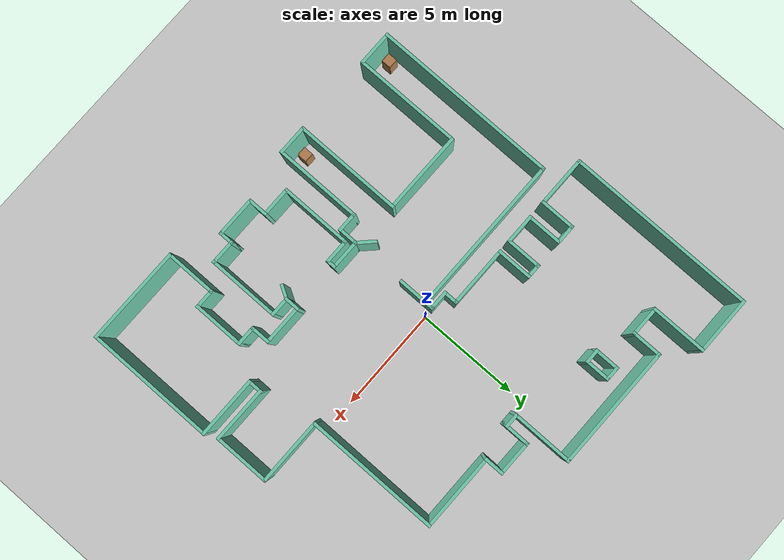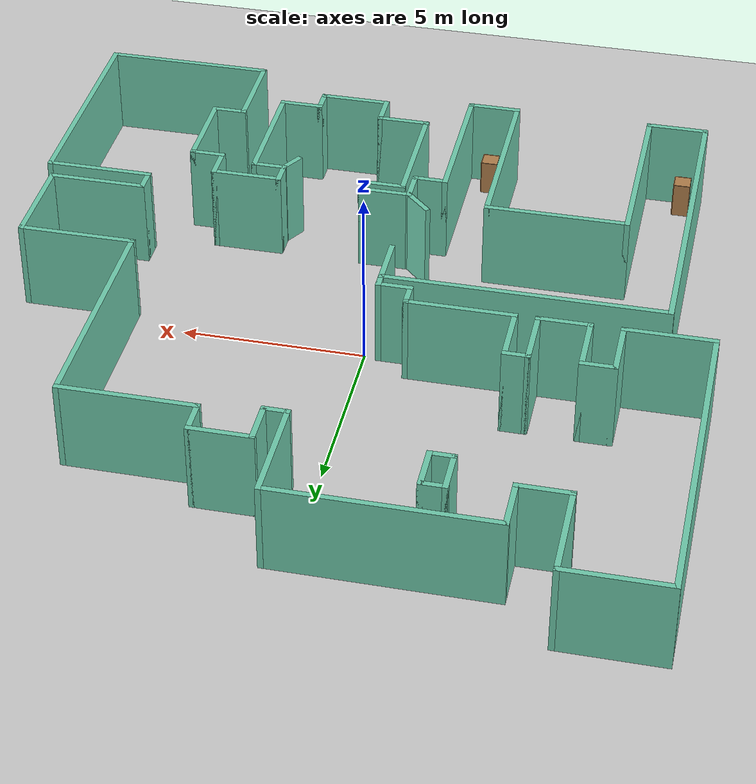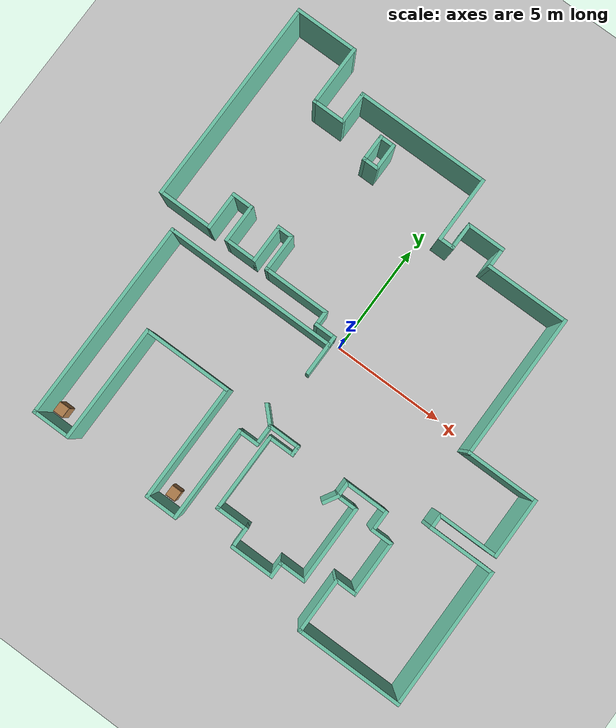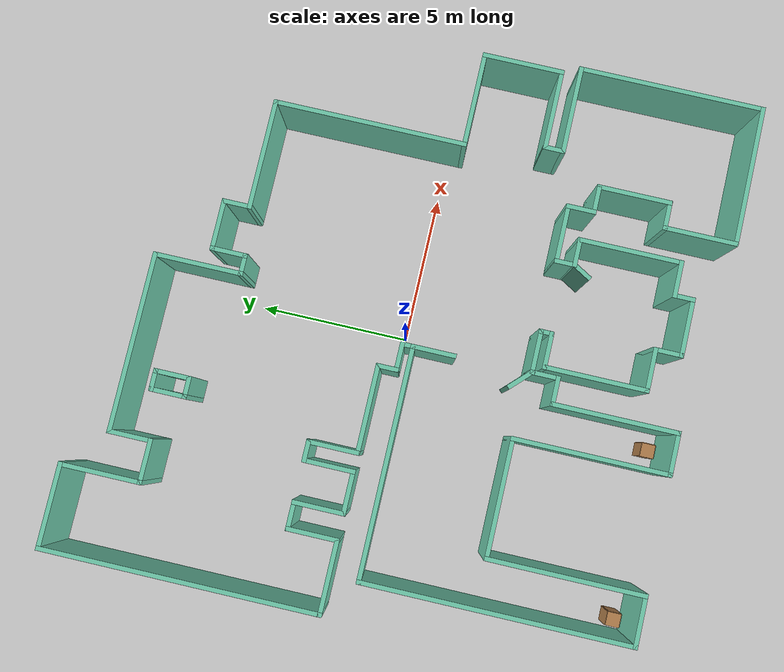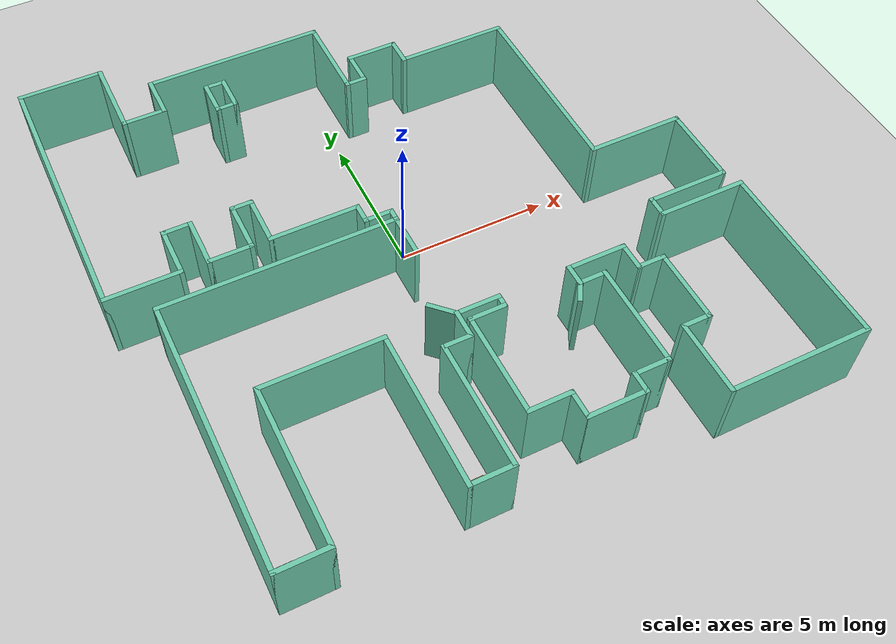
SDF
<sdf version="1.6">
 <world name="default">
  <light name="sun" type="directional">
   <pose>0 0 10 0 -0 0</pose>
   <diffuse>0.8 0.8 0.8 1</diffuse>
   <specular>0.2 0.2 0.2 1</specular>
   <attenuation>
    <range>1000</range>
    <constant>0.9</constant>
    <linear>0.01</linear>
    <quadratic>0.001</quadratic>
   </attenuation>
   <direction>-0.5 0.1 -0.9</direction>
  </light>
  <model name="ground_plane">
   <static>1</static>
   <link name="link">
    <collision name="collision">
     <geometry><plane><normal>0 0 1</normal><size>100 100</size></plane></geometry>
     <surface>
      <contact><collide_bitmask>65535</collide_bitmask></contact>
      <friction><ode><mu>100</mu><mu2>50</mu2></ode></friction>
     </surface>
    </collision>
    <visual name="visual">
     <cast_shadows>0</cast_shadows>
     <geometry><plane><normal>0 0 1</normal><size>100 100</size></plane></geometry>
     <material>
      <script><uri>file://media/materials/scripts/gazebo.material</uri><name>Gazebo/Grey</name></script>
     </material>
    </visual>
   </link>
  </model>
  <gravity>0 0 -9.8</gravity>
  <magnetic_field>6e-06 2.3e-05 -4.2e-05</magnetic_field>
  <atmosphere type="adiabatic"/>
  <physics name="default_physics" default="0" type="ode">
   <max_step_size>0.001</max_step_size>
   <real_time_factor>1</real_time_factor>
   <real_time_update_rate>1000</real_time_update_rate>
  </physics>
  <scene><ambient>0.4 0.4 0.4 1</ambient><background>0.7 0.7 0.7 1</background><shadows>1</shadows></scene>
  <audio><device>default</device></audio>
  <spherical_coordinates>
   <surface_model>EARTH_WGS84</surface_model>
   <latitude_deg>0</latitude_deg>
   <longitude_deg>0</longitude_deg>
   <elevation>0</elevation>
   <heading_deg>0</heading_deg>
  </spherical_coordinates>
  <model name="map_119">
   <pose>0.290775 -0.032065 0 0 -0 0</pose>
   <link name="Wall_10">
    <collision name="Wall_10_Collision">
     <geometry><box><size>9.25 0.15 2.5</size></box></geometry>
     <pose>0 0 1.25 0 -0 0</pose>
    </collision>
    <visual name="Wall_10_Visual">
     <pose>0 0 1.25 0 -0 0</pose>
     <geometry><box><size>9.25 0.15 2.5</size></box></geometry>
     <material>
      <script><uri>file://media/materials/scripts/gazebo.material</uri><name>Gazebo/Grey</name></script>
      <ambient>0.435294 0.796078 0.67451 1</ambient>
     </material>
     <meta><layer>0</layer></meta>
    </visual>
    <pose>-9.525 5.2 0 0 -0 -1.5708</pose>
   </link>
   <link name="Wall_100">
    <collision name="Wall_100_Collision">
     <geometry><box><size>1.25 0.15 2.5</size></box></geometry>
     <pose>0 0 1.25 0 -0 0</pose>
    </collision>
    <visual name="Wall_100_Visual">
     <pose>0 0 1.25 0 -0 0</pose>
     <geometry><box><size>1.25 0.15 2.5</size></box></geometry>
     <material>
      <script><uri>file://media/materials/scripts/gazebo.material</uri><name>Gazebo/Grey</name></script>
      <ambient>0.435294 0.796078 0.67451 1</ambient>
     </material>
     <meta><layer>0</layer></meta>
    </visual>
    <pose>-3.28112 6.98822 0 0 -0 -1.5708</pose>
   </link>
   <link name="Wall_101">
    <collision name="Wall_101_Collision">
     <geometry><box><size>0.75 0.15 2.5</size></box></geometry>
     <pose>0 0 1.25 0 -0 0</pose>
    </collision>
    <visual name="Wall_101_Visual">
     <pose>0 0 1.25 0 -0 0</pose>
     <geometry><box><size>0.75 0.15 2.5</size></box></geometry>
     <material>
      <script><uri>file://media/materials/scripts/gazebo.material</uri><name>Gazebo/Grey</name></script>
      <ambient>0.435294 0.796078 0.67451 1</ambient>
     </material>
     <meta><layer>0</layer></meta>
    </visual>
    <pose>-3.58112 6.43822 0 0 -0 3.14159</pose>
   </link>
   <link name="Wall_12">
    <collision name="Wall_12_Collision">
     <geometry><box><size>2.5 0.15 2.5</size></box></geometry>
     <pose>0 0 1.25 0 -0 0</pose>
    </collision>
    <visual name="Wall_12_Visual">
     <pose>0 0 1.25 0 -0 0</pose>
     <geometry><box><size>2.5 0.15 2.5</size></box></geometry>
     <material>
      <script><uri>file://media/materials/scripts/gazebo.material</uri><name>Gazebo/Grey</name></script>
      <ambient>0.435294 0.796078 0.67451 1</ambient>
     </material>
     <meta><layer>0</layer></meta>
    </visual>
    <pose>-8.35 0.65 0 0 -0 0</pose>
   </link>
   <link name="Wall_13">
    <collision name="Wall_13_Collision">
     <geometry><box><size>1.75 0.15 2.5</size></box></geometry>
     <pose>0 0 1.25 0 -0 0</pose>
    </collision>
    <visual name="Wall_13_Visual">
     <pose>0 0 1.25 0 -0 0</pose>
     <geometry><box><size>1.75 0.15 2.5</size></box></geometry>
     <material>
      <script><uri>file://media/materials/scripts/gazebo.material</uri><name>Gazebo/Grey</name></script>
      <ambient>0.435294 0.796078 0.67451 1</ambient>
     </material>
     <meta><layer>0</layer></meta>
    </visual>
    <pose>-7.175 1.45 0 0 -0 1.5708</pose>
   </link>
   <link name="Wall_14">
    <collision name="Wall_14_Collision">
     <geometry><box><size>1 0.15 2.5</size></box></geometry>
     <pose>0 0 1.25 0 -0 0</pose>
    </collision>
    <visual name="Wall_14_Visual">
     <pose>0 0 1.25 0 -0 0</pose>
     <geometry><box><size>1 0.15 2.5</size></box></geometry>
     <material>
      <script><uri>file://media/materials/scripts/gazebo.material</uri><name>Gazebo/Grey</name></script>
      <ambient>0.435294 0.796078 0.67451 1</ambient>
     </material>
     <meta><layer>0</layer></meta>
    </visual>
    <pose>-6.75 2.25 0 0 -0 0</pose>
   </link>
   <link name="Wall_15">
    <collision name="Wall_15_Collision">
     <geometry><box><size>1.75 0.15 2.5</size></box></geometry>
     <pose>0 0 1.25 0 -0 0</pose>
    </collision>
    <visual name="Wall_15_Visual">
     <pose>0 0 1.25 0 -0 0</pose>
     <geometry><box><size>1.75 0.15 2.5</size></box></geometry>
     <material>
      <script><uri>file://media/materials/scripts/gazebo.material</uri><name>Gazebo/Grey</name></script>
      <ambient>0.435294 0.796078 0.67451 1</ambient>
     </material>
     <meta><layer>0</layer></meta>
    </visual>
    <pose>-6.325 1.45 0 0 -0 -1.5708</pose>
   </link>
   <link name="Wall_21">
    <collision name="Wall_21_Collision">
     <geometry><box><size>1.5 0.15 2.5</size></box></geometry>
     <pose>0 0 1.25 0 -0 0</pose>
    </collision>
    <visual name="Wall_21_Visual">
     <pose>0 0 1.25 0 -0 0</pose>
     <geometry><box><size>1.5 0.15 2.5</size></box></geometry>
     <material>
      <script><uri>file://media/materials/scripts/gazebo.material</uri><name>Gazebo/Grey</name></script>
      <ambient>0.435294 0.796078 0.67451 1</ambient>
     </material>
     <meta><layer>0</layer></meta>
    </visual>
    <pose>-5.65 0.65 0 0 -0 0</pose>
   </link>
   <link name="Wall_22">
    <collision name="Wall_22_Collision">
     <geometry><box><size>1.75 0.15 2.5</size></box></geometry>
     <pose>0 0 1.25 0 -0 0</pose>
    </collision>
    <visual name="Wall_22_Visual">
     <pose>0 0 1.25 0 -0 0</pose>
     <geometry><box><size>1.75 0.15 2.5</size></box></geometry>
     <material>
      <script><uri>file://media/materials/scripts/gazebo.material</uri><name>Gazebo/Grey</name></script>
      <ambient>0.435294 0.796078 0.67451 1</ambient>
     </material>
     <meta><layer>0</layer></meta>
    </visual>
    <pose>-4.975 1.45 0 0 -0 1.5708</pose>
   </link>
   <link name="Wall_23">
    <collision name="Wall_23_Collision">
     <geometry><box><size>0.75 0.15 2.5</size></box></geometry>
     <pose>0 0 1.25 0 -0 0</pose>
    </collision>
    <visual name="Wall_23_Visual">
     <pose>0 0 1.25 0 -0 0</pose>
     <geometry><box><size>0.75 0.15 2.5</size></box></geometry>
     <material>
      <script><uri>file://media/materials/scripts/gazebo.material</uri><name>Gazebo/Grey</name></script>
      <ambient>0.435294 0.796078 0.67451 1</ambient>
     </material>
     <meta><layer>0</layer></meta>
    </visual>
    <pose>-4.675 2.25 0 0 -0 0</pose>
   </link>
   <link name="Wall_24">
    <collision name="Wall_24_Collision">
     <geometry><box><size>1.75 0.15 2.5</size></box></geometry>
     <pose>0 0 1.25 0 -0 0</pose>
    </collision>
    <visual name="Wall_24_Visual">
     <pose>0 0 1.25 0 -0 0</pose>
     <geometry><box><size>1.75 0.15 2.5</size></box></geometry>
     <material>
      <script><uri>file://media/materials/scripts/gazebo.material</uri><name>Gazebo/Grey</name></script>
      <ambient>0.435294 0.796078 0.67451 1</ambient>
     </material>
     <meta><layer>0</layer></meta>
    </visual>
    <pose>-4.375 1.45 0 0 -0 -1.5708</pose>
   </link>
   <link name="Wall_25">
    <collision name="Wall_25_Collision">
     <geometry><box><size>3 0.15 2.5</size></box></geometry>
     <pose>0 0 1.25 0 -0 0</pose>
    </collision>
    <visual name="Wall_25_Visual">
     <pose>0 0 1.25 0 -0 0</pose>
     <geometry><box><size>3 0.15 2.5</size></box></geometry>
     <material>
      <script><uri>file://media/materials/scripts/gazebo.material</uri><name>Gazebo/Grey</name></script>
      <ambient>0.435294 0.796078 0.67451 1</ambient>
     </material>
     <meta><layer>0</layer></meta>
    </visual>
    <pose>-2.95 0.65 0 0 -0 0</pose>
   </link>
   <link name="Wall_26">
    <collision name="Wall_26_Collision">
     <geometry><box><size>0.75 0.15 2.5</size></box></geometry>
     <pose>0 0 1.25 0 -0 0</pose>
    </collision>
    <visual name="Wall_26_Visual">
     <pose>0 0 1.25 0 -0 0</pose>
     <geometry><box><size>0.75 0.15 2.5</size></box></geometry>
     <material>
      <script><uri>file://media/materials/scripts/gazebo.material</uri><name>Gazebo/Grey</name></script>
      <ambient>0.435294 0.796078 0.67451 1</ambient>
     </material>
     <meta><layer>0</layer></meta>
    </visual>
    <pose>-1.525 0.35 0 0 -0 -1.5708</pose>
   </link>
   <link name="Wall_27">
    <collision name="Wall_27_Collision">
     <geometry><box><size>1 0.15 2.5</size></box></geometry>
     <pose>0 0 1.25 0 -0 0</pose>
    </collision>
    <visual name="Wall_27_Visual">
     <pose>0 0 1.25 0 -0 0</pose>
     <geometry><box><size>1 0.15 2.5</size></box></geometry>
     <material>
      <script><uri>file://media/materials/scripts/gazebo.material</uri><name>Gazebo/Grey</name></script>
      <ambient>0.435294 0.796078 0.67451 1</ambient>
     </material>
     <meta><layer>0</layer></meta>
    </visual>
    <pose>-1.1 0.05 0 0 -0 0</pose>
   </link>
   <link name="Wall_30">
    <collision name="Wall_30_Collision">
     <geometry><box><size>0.5 0.15 2.5</size></box></geometry>
     <pose>0 0 1.25 0 -0 0</pose>
    </collision>
    <visual name="Wall_30_Visual">
     <pose>0 0 1.25 0 -0 0</pose>
     <geometry><box><size>0.5 0.15 2.5</size></box></geometry>
     <material>
      <script><uri>file://media/materials/scripts/gazebo.material</uri><name>Gazebo/Grey</name></script>
      <ambient>0.435294 0.796078 0.67451 1</ambient>
     </material>
     <meta><layer>0</layer></meta>
    </visual>
    <pose>-0.675 -0.125 0 0 -0 -1.5708</pose>
   </link>
   <link name="Wall_31">
    <collision name="Wall_31_Collision">
     <geometry><box><size>7.75 0.15 2.5</size></box></geometry>
     <pose>0 0 1.25 0 -0 0</pose>
    </collision>
    <visual name="Wall_31_Visual">
     <pose>0 0 1.25 0 -0 0</pose>
     <geometry><box><size>7.75 0.15 2.5</size></box></geometry>
     <material>
      <script><uri>file://media/materials/scripts/gazebo.material</uri><name>Gazebo/Grey</name></script>
      <ambient>0.435294 0.796078 0.67451 1</ambient>
     </material>
     <meta><layer>0</layer></meta>
    </visual>
    <pose>-4.475 -0.3 0 0 -0 3.14159</pose>
   </link>
   <link name="Wall_32">
    <collision name="Wall_32_Collision">
     <geometry><box><size>9 0.15 2.5</size></box></geometry>
     <pose>0 0 1.25 0 -0 0</pose>
    </collision>
    <visual name="Wall_32_Visual">
     <pose>0 0 1.25 0 -0 0</pose>
     <geometry><box><size>9 0.15 2.5</size></box></geometry>
     <material>
      <script><uri>file://media/materials/scripts/gazebo.material</uri><name>Gazebo/Grey</name></script>
      <ambient>0.435294 0.796078 0.67451 1</ambient>
     </material>
     <meta><layer>0</layer></meta>
    </visual>
    <pose>-8.275 -4.725 0 0 -0 -1.5708</pose>
   </link>
   <link name="Wall_33">
    <collision name="Wall_33_Collision">
     <geometry><box><size>1.75 0.15 2.5</size></box></geometry>
     <pose>0 0 1.25 0 -0 0</pose>
    </collision>
    <visual name="Wall_33_Visual">
     <pose>0 0 1.25 0 -0 0</pose>
     <geometry><box><size>1.75 0.15 2.5</size></box></geometry>
     <material>
      <script><uri>file://media/materials/scripts/gazebo.material</uri><name>Gazebo/Grey</name></script>
      <ambient>0.435294 0.796078 0.67451 1</ambient>
     </material>
     <meta><layer>0</layer></meta>
    </visual>
    <pose>-7.475 -9.15 0 0 -0 0</pose>
   </link>
   <link name="Wall_34">
    <collision name="Wall_34_Collision">
     <geometry><box><size>5.25 0.15 2.5</size></box></geometry>
     <pose>0 0 1.25 0 -0 0</pose>
    </collision>
    <visual name="Wall_34_Visual">
     <pose>0 0 1.25 0 -0 0</pose>
     <geometry><box><size>5.25 0.15 2.5</size></box></geometry>
     <material>
      <script><uri>file://media/materials/scripts/gazebo.material</uri><name>Gazebo/Grey</name></script>
      <ambient>0.435294 0.796078 0.67451 1</ambient>
     </material>
     <meta><layer>0</layer></meta>
    </visual>
    <pose>-6.675 -6.6 0 0 -0 1.5708</pose>
   </link>
   <link name="Wall_35">
    <collision name="Wall_35_Collision">
     <geometry><box><size>4 0.15 2.5</size></box></geometry>
     <pose>0 0 1.25 0 -0 0</pose>
    </collision>
    <visual name="Wall_35_Visual">
     <pose>0 0 1.25 0 -0 0</pose>
     <geometry><box><size>4 0.15 2.5</size></box></geometry>
     <material>
      <script><uri>file://media/materials/scripts/gazebo.material</uri><name>Gazebo/Grey</name></script>
      <ambient>0.435294 0.796078 0.67451 1</ambient>
     </material>
     <meta><layer>0</layer></meta>
    </visual>
    <pose>-4.75 -4.05 0 0 -0 0</pose>
   </link>
   <link name="Wall_36">
    <collision name="Wall_36_Collision">
     <geometry><box><size>5.25 0.15 2.5</size></box></geometry>
     <pose>0 0 1.25 0 -0 0</pose>
    </collision>
    <visual name="Wall_36_Visual">
     <pose>0 0 1.25 0 -0 0</pose>
     <geometry><box><size>5.25 0.15 2.5</size></box></geometry>
     <material>
      <script><uri>file://media/materials/scripts/gazebo.material</uri><name>Gazebo/Grey</name></script>
      <ambient>0.435294 0.796078 0.67451 1</ambient>
     </material>
     <meta><layer>0</layer></meta>
    </visual>
    <pose>-2.825 -6.6 0 0 -0 -1.5708</pose>
   </link>
   <link name="Wall_37">
    <collision name="Wall_37_Collision">
     <geometry><box><size>1.5 0.15 2.5</size></box></geometry>
     <pose>0 0 1.25 0 -0 0</pose>
    </collision>
    <visual name="Wall_37_Visual">
     <pose>0 0 1.25 0 -0 0</pose>
     <geometry><box><size>1.5 0.15 2.5</size></box></geometry>
     <material>
      <script><uri>file://media/materials/scripts/gazebo.material</uri><name>Gazebo/Grey</name></script>
      <ambient>0.435294 0.796078 0.67451 1</ambient>
     </material>
     <meta><layer>0</layer></meta>
    </visual>
    <pose>-2.15 -9.15 0 0 -0 0</pose>
   </link>
   <link name="Wall_38">
    <collision name="Wall_38_Collision">
     <geometry><box><size>4.25 0.15 2.5</size></box></geometry>
     <pose>0 0 1.25 0 -0 0</pose>
    </collision>
    <visual name="Wall_38_Visual">
     <pose>0 0 1.25 0 -0 0</pose>
     <geometry><box><size>4.25 0.15 2.5</size></box></geometry>
     <material>
      <script><uri>file://media/materials/scripts/gazebo.material</uri><name>Gazebo/Grey</name></script>
      <ambient>0.435294 0.796078 0.67451 1</ambient>
     </material>
     <meta><layer>0</layer></meta>
    </visual>
    <pose>-1.475 -7.1 0 0 -0 1.5708</pose>
   </link>
   <link name="Wall_39">
    <collision name="Wall_39_Collision">
     <geometry><box><size>1 0.15 2.5</size></box></geometry>
     <pose>0 0 1.25 0 -0 0</pose>
    </collision>
    <visual name="Wall_39_Visual">
     <pose>0 0 1.25 0 -0 0</pose>
     <geometry><box><size>1 0.15 2.5</size></box></geometry>
     <material>
      <script><uri>file://media/materials/scripts/gazebo.material</uri><name>Gazebo/Grey</name></script>
      <ambient>0.435294 0.796078 0.67451 1</ambient>
     </material>
     <meta><layer>0</layer></meta>
    </visual>
    <pose>-1.05 -5.05 0 0 -0 0</pose>
   </link>
   <link name="Wall_40">
    <collision name="Wall_40_Collision">
     <geometry><box><size>1 0.15 2.5</size></box></geometry>
     <pose>0 0 1.25 0 -0 0</pose>
    </collision>
    <visual name="Wall_40_Visual">
     <pose>0 0 1.25 0 -0 0</pose>
     <geometry><box><size>1 0.15 2.5</size></box></geometry>
     <material>
      <script><uri>file://media/materials/scripts/gazebo.material</uri><name>Gazebo/Grey</name></script>
      <ambient>0.435294 0.796078 0.67451 1</ambient>
     </material>
     <meta><layer>0</layer></meta>
    </visual>
    <pose>-0.625 -4.625 0 0 -0 1.5708</pose>
   </link>
   <link name="Wall_41">
    <collision name="Wall_41_Collision">
     <geometry><box><size>1.5 0.15 2.5</size></box></geometry>
     <pose>0 0 1.25 0 -0 0</pose>
    </collision>
    <visual name="Wall_41_Visual">
     <pose>0 0 1.25 0 -0 0</pose>
     <geometry><box><size>1.5 0.15 2.5</size></box></geometry>
     <material>
      <script><uri>file://media/materials/scripts/gazebo.material</uri><name>Gazebo/Grey</name></script>
      <ambient>0.435294 0.796078 0.67451 1</ambient>
     </material>
     <meta><layer>0</layer></meta>
    </visual>
    <pose>0.05 -4.2 0 0 -0 0</pose>
   </link>
   <link name="Wall_42">
    <collision name="Wall_42_Collision">
     <geometry><box><size>0.5 0.15 2.5</size></box></geometry>
     <pose>0 0 1.25 0 -0 0</pose>
    </collision>
    <visual name="Wall_42_Visual">
     <pose>0 0 1.25 0 -0 0</pose>
     <geometry><box><size>0.5 0.15 2.5</size></box></geometry>
     <material>
      <script><uri>file://media/materials/scripts/gazebo.material</uri><name>Gazebo/Grey</name></script>
      <ambient>0.435294 0.796078 0.67451 1</ambient>
     </material>
     <meta><layer>0</layer></meta>
    </visual>
    <pose>0.725 -4.375 0 0 -0 -1.5708</pose>
   </link>
   <link name="Wall_43">
    <collision name="Wall_43_Collision">
     <geometry><box><size>1.25 0.15 2.5</size></box></geometry>
     <pose>0 0 1.25 0 -0 0</pose>
    </collision>
    <visual name="Wall_43_Visual">
     <pose>0 0 1.25 0 -0 0</pose>
     <geometry><box><size>1.25 0.15 2.5</size></box></geometry>
     <material>
      <script><uri>file://media/materials/scripts/gazebo.material</uri><name>Gazebo/Grey</name></script>
      <ambient>0.435294 0.796078 0.67451 1</ambient>
     </material>
     <meta><layer>0</layer></meta>
    </visual>
    <pose>0.175 -4.55 0 0 -0 3.14159</pose>
   </link>
   <link name="Wall_44">
    <collision name="Wall_44_Collision">
     <geometry><box><size>3.5 0.15 2.5</size></box></geometry>
     <pose>0 0 1.25 0 -0 0</pose>
    </collision>
    <visual name="Wall_44_Visual">
     <pose>0 0 1.25 0 -0 0</pose>
     <geometry><box><size>3.5 0.15 2.5</size></box></geometry>
     <material>
      <script><uri>file://media/materials/scripts/gazebo.material</uri><name>Gazebo/Grey</name></script>
      <ambient>0.435294 0.796078 0.67451 1</ambient>
     </material>
     <meta><layer>0</layer></meta>
    </visual>
    <pose>-0.375 -6.225 0 0 -0 -1.5708</pose>
   </link>
   <link name="Wall_45">
    <collision name="Wall_45_Collision">
     <geometry><box><size>1.5 0.15 2.5</size></box></geometry>
     <pose>0 0 1.25 0 -0 0</pose>
    </collision>
    <visual name="Wall_45_Visual">
     <pose>0 0 1.25 0 -0 0</pose>
     <geometry><box><size>1.5 0.15 2.5</size></box></geometry>
     <material>
      <script><uri>file://media/materials/scripts/gazebo.material</uri><name>Gazebo/Grey</name></script>
      <ambient>0.435294 0.796078 0.67451 1</ambient>
     </material>
     <meta><layer>0</layer></meta>
    </visual>
    <pose>0.3 -7.9 0 0 -0 0</pose>
   </link>
   <link name="Wall_46">
    <collision name="Wall_46_Collision">
     <geometry><box><size>1 0.15 2.5</size></box></geometry>
     <pose>0 0 1.25 0 -0 0</pose>
    </collision>
    <visual name="Wall_46_Visual">
     <pose>0 0 1.25 0 -0 0</pose>
     <geometry><box><size>1 0.15 2.5</size></box></geometry>
     <material>
      <script><uri>file://media/materials/scripts/gazebo.material</uri><name>Gazebo/Grey</name></script>
      <ambient>0.435294 0.796078 0.67451 1</ambient>
     </material>
     <meta><layer>0</layer></meta>
    </visual>
    <pose>0.975 -8.325 0 0 -0 -1.5708</pose>
   </link>
   <link name="Wall_49">
    <collision name="Wall_49_Collision">
     <geometry><box><size>2 0.15 2.5</size></box></geometry>
     <pose>0 0 1.25 0 -0 0</pose>
    </collision>
    <visual name="Wall_49_Visual">
     <pose>0 0 1.25 0 -0 0</pose>
     <geometry><box><size>2 0.15 2.5</size></box></geometry>
     <material>
      <script><uri>file://media/materials/scripts/gazebo.material</uri><name>Gazebo/Grey</name></script>
      <ambient>0.435294 0.796078 0.67451 1</ambient>
     </material>
     <meta><layer>0</layer></meta>
    </visual>
    <pose>1.9 -8.75 0 0 -0 0</pose>
   </link>
   <link name="Wall_50">
    <collision name="Wall_50_Collision">
     <geometry><box><size>0.75 0.15 2.5</size></box></geometry>
     <pose>0 0 1.25 0 -0 0</pose>
    </collision>
    <visual name="Wall_50_Visual">
     <pose>0 0 1.25 0 -0 0</pose>
     <geometry><box><size>0.75 0.15 2.5</size></box></geometry>
     <material>
      <script><uri>file://media/materials/scripts/gazebo.material</uri><name>Gazebo/Grey</name></script>
      <ambient>0.435294 0.796078 0.67451 1</ambient>
     </material>
     <meta><layer>0</layer></meta>
    </visual>
    <pose>2.825 -8.45 0 0 -0 1.5708</pose>
   </link>
   <link name="Wall_51">
    <collision name="Wall_51_Collision">
     <geometry><box><size>1.25 0.15 2.5</size></box></geometry>
     <pose>0 0 1.25 0 -0 0</pose>
    </collision>
    <visual name="Wall_51_Visual">
     <pose>0 0 1.25 0 -0 0</pose>
     <geometry><box><size>1.25 0.15 2.5</size></box></geometry>
     <material>
      <script><uri>file://media/materials/scripts/gazebo.material</uri><name>Gazebo/Grey</name></script>
      <ambient>0.435294 0.796078 0.67451 1</ambient>
     </material>
     <meta><layer>0</layer></meta>
    </visual>
    <pose>3.375 -8.15 0 0 -0 0</pose>
   </link>
   <link name="Wall_52">
    <collision name="Wall_52_Collision">
     <geometry><box><size>3.5 0.15 2.5</size></box></geometry>
     <pose>0 0 1.25 0 -0 0</pose>
    </collision>
    <visual name="Wall_52_Visual">
     <pose>0 0 1.25 0 -0 0</pose>
     <geometry><box><size>3.5 0.15 2.5</size></box></geometry>
     <material>
      <script><uri>file://media/materials/scripts/gazebo.material</uri><name>Gazebo/Grey</name></script>
      <ambient>0.435294 0.796078 0.67451 1</ambient>
     </material>
     <meta><layer>0</layer></meta>
    </visual>
    <pose>3.925 -6.475 0 0 -0 1.5708</pose>
   </link>
   <link name="Wall_58">
    <collision name="Wall_58_Collision">
     <geometry><box><size>1 0.15 2.5</size></box></geometry>
     <pose>0 0 1.25 0 -0 0</pose>
    </collision>
    <visual name="Wall_58_Visual">
     <pose>0 0 1.25 0 -0 0</pose>
     <geometry><box><size>1 0.15 2.5</size></box></geometry>
     <material>
      <script><uri>file://media/materials/scripts/gazebo.material</uri><name>Gazebo/Grey</name></script>
      <ambient>0.435294 0.796078 0.67451 1</ambient>
     </material>
     <meta><layer>0</layer></meta>
    </visual>
    <pose>3.5 -4.8 0 0 -0 3.14159</pose>
   </link>
   <link name="Wall_59">
    <collision name="Wall_59_Collision">
     <geometry><box><size>0.75 0.15 2.5</size></box></geometry>
     <pose>0 0 1.25 0 -0 0</pose>
    </collision>
    <visual name="Wall_59_Visual">
     <pose>0 0 1.25 0 -0 0</pose>
     <geometry><box><size>0.75 0.15 2.5</size></box></geometry>
     <material>
      <script><uri>file://media/materials/scripts/gazebo.material</uri><name>Gazebo/Grey</name></script>
      <ambient>0.435294 0.796078 0.67451 1</ambient>
     </material>
     <meta><layer>0</layer></meta>
    </visual>
    <pose>3.075 -4.5 0 0 -0 1.5708</pose>
   </link>
   <link name="Wall_60">
    <collision name="Wall_60_Collision">
     <geometry><box><size>2 0.15 2.5</size></box></geometry>
     <pose>0 0 1.25 0 -0 0</pose>
    </collision>
    <visual name="Wall_60_Visual">
     <pose>0 0 1.25 0 -0 0</pose>
     <geometry><box><size>2 0.15 2.5</size></box></geometry>
     <material>
      <script><uri>file://media/materials/scripts/gazebo.material</uri><name>Gazebo/Grey</name></script>
      <ambient>0.435294 0.796078 0.67451 1</ambient>
     </material>
     <meta><layer>0</layer></meta>
    </visual>
    <pose>4 -4.2 0 0 -0 0</pose>
   </link>
   <link name="Wall_61">
    <collision name="Wall_61_Collision">
     <geometry><box><size>1 0.15 2.5</size></box></geometry>
     <pose>0 0 1.25 0 -0 0</pose>
    </collision>
    <visual name="Wall_61_Visual">
     <pose>0 0 1.25 0 -0 0</pose>
     <geometry><box><size>1 0.15 2.5</size></box></geometry>
     <material>
      <script><uri>file://media/materials/scripts/gazebo.material</uri><name>Gazebo/Grey</name></script>
      <ambient>0.435294 0.796078 0.67451 1</ambient>
     </material>
     <meta><layer>0</layer></meta>
    </visual>
    <pose>4.925 -4.625 0 0 -0 -1.5708</pose>
   </link>
   <link name="Wall_62">
    <collision name="Wall_62_Collision">
     <geometry><box><size>1 0.15 2.5</size></box></geometry>
     <pose>0 0 1.25 0 -0 0</pose>
    </collision>
    <visual name="Wall_62_Visual">
     <pose>0 0 1.25 0 -0 0</pose>
     <geometry><box><size>1 0.15 2.5</size></box></geometry>
     <material>
      <script><uri>file://media/materials/scripts/gazebo.material</uri><name>Gazebo/Grey</name></script>
      <ambient>0.435294 0.796078 0.67451 1</ambient>
     </material>
     <meta><layer>0</layer></meta>
    </visual>
    <pose>5.35 -5.05 0 0 -0 0</pose>
   </link>
   <link name="Wall_63">
    <collision name="Wall_63_Collision">
     <geometry><box><size>2.5 0.15 2.5</size></box></geometry>
     <pose>0 0 1.25 0 -0 0</pose>
    </collision>
    <visual name="Wall_63_Visual">
     <pose>0 0 1.25 0 -0 0</pose>
     <geometry><box><size>2.5 0.15 2.5</size></box></geometry>
     <material>
      <script><uri>file://media/materials/scripts/gazebo.material</uri><name>Gazebo/Grey</name></script>
      <ambient>0.435294 0.796078 0.67451 1</ambient>
     </material>
     <meta><layer>0</layer></meta>
    </visual>
    <pose>5.775 -6.225 0 0 -0 -1.5708</pose>
   </link>
   <link name="Wall_64">
    <collision name="Wall_64_Collision">
     <geometry><box><size>1 0.15 2.5</size></box></geometry>
     <pose>0 0 1.25 0 -0 0</pose>
    </collision>
    <visual name="Wall_64_Visual">
     <pose>0 0 1.25 0 -0 0</pose>
     <geometry><box><size>1 0.15 2.5</size></box></geometry>
     <material>
      <script><uri>file://media/materials/scripts/gazebo.material</uri><name>Gazebo/Grey</name></script>
      <ambient>0.435294 0.796078 0.67451 1</ambient>
     </material>
     <meta><layer>0</layer></meta>
    </visual>
    <pose>5.35 -7.4 0 0 -0 3.14159</pose>
   </link>
   <link name="Wall_65">
    <collision name="Wall_65_Collision">
     <geometry><box><size>2.5 0.15 2.5</size></box></geometry>
     <pose>0 0 1.25 0 -0 0</pose>
    </collision>
    <visual name="Wall_65_Visual">
     <pose>0 0 1.25 0 -0 0</pose>
     <geometry><box><size>2.5 0.15 2.5</size></box></geometry>
     <material>
      <script><uri>file://media/materials/scripts/gazebo.material</uri><name>Gazebo/Grey</name></script>
      <ambient>0.435294 0.796078 0.67451 1</ambient>
     </material>
     <meta><layer>0</layer></meta>
    </visual>
    <pose>4.925 -8.575 0 0 -0 -1.5708</pose>
   </link>
   <link name="Wall_66">
    <collision name="Wall_66_Collision">
     <geometry><box><size>4.75 0.15 2.5</size></box></geometry>
     <pose>0 0 1.25 0 -0 0</pose>
    </collision>
    <visual name="Wall_66_Visual">
     <pose>0 0 1.25 0 -0 0</pose>
     <geometry><box><size>4.75 0.15 2.5</size></box></geometry>
     <material>
      <script><uri>file://media/materials/scripts/gazebo.material</uri><name>Gazebo/Grey</name></script>
      <ambient>0.435294 0.796078 0.67451 1</ambient>
     </material>
     <meta><layer>0</layer></meta>
    </visual>
    <pose>7.225 -9.75 0 0 -0 0</pose>
   </link>
   <link name="Wall_67">
    <collision name="Wall_67_Collision">
     <geometry><box><size>6.25 0.15 2.5</size></box></geometry>
     <pose>0 0 1.25 0 -0 0</pose>
    </collision>
    <visual name="Wall_67_Visual">
     <pose>0 0 1.25 0 -0 0</pose>
     <geometry><box><size>6.25 0.15 2.5</size></box></geometry>
     <material>
      <script><uri>file://media/materials/scripts/gazebo.material</uri><name>Gazebo/Grey</name></script>
      <ambient>0.435294 0.796078 0.67451 1</ambient>
     </material>
     <meta><layer>0</layer></meta>
    </visual>
    <pose>9.525 -6.7 0 0 -0 1.5708</pose>
   </link>
   <link name="Wall_68">
    <collision name="Wall_68_Collision">
     <geometry><box><size>3 0.15 2.5</size></box></geometry>
     <pose>0 0 1.25 0 -0 0</pose>
    </collision>
    <visual name="Wall_68_Visual">
     <pose>0 0 1.25 0 -0 0</pose>
     <geometry><box><size>3 0.15 2.5</size></box></geometry>
     <material>
      <script><uri>file://media/materials/scripts/gazebo.material</uri><name>Gazebo/Grey</name></script>
      <ambient>0.435294 0.796078 0.67451 1</ambient>
     </material>
     <meta><layer>0</layer></meta>
    </visual>
    <pose>8.1 -3.65 0 0 -0 3.14159</pose>
   </link>
   <link name="Wall_69">
    <collision name="Wall_69_Collision">
     <geometry><box><size>0.75 0.15 2.5</size></box></geometry>
     <pose>0 0 1.25 0 -0 0</pose>
    </collision>
    <visual name="Wall_69_Visual">
     <pose>0 0 1.25 0 -0 0</pose>
     <geometry><box><size>0.75 0.15 2.5</size></box></geometry>
     <material>
      <script><uri>file://media/materials/scripts/gazebo.material</uri><name>Gazebo/Grey</name></script>
      <ambient>0.435294 0.796078 0.67451 1</ambient>
     </material>
     <meta><layer>0</layer></meta>
    </visual>
    <pose>6.675 -3.35 0 0 -0 1.5708</pose>
   </link>
   <link name="Wall_70">
    <collision name="Wall_70_Collision">
     <geometry><box><size>2.75 0.15 2.5</size></box></geometry>
     <pose>0 0 1.25 0 -0 0</pose>
    </collision>
    <visual name="Wall_70_Visual">
     <pose>0 0 1.25 0 -0 0</pose>
     <geometry><box><size>2.75 0.15 2.5</size></box></geometry>
     <material>
      <script><uri>file://media/materials/scripts/gazebo.material</uri><name>Gazebo/Grey</name></script>
      <ambient>0.435294 0.796078 0.67451 1</ambient>
     </material>
     <meta><layer>0</layer></meta>
    </visual>
    <pose>7.975 -3.05 0 0 -0 0</pose>
   </link>
   <link name="Wall_73">
    <collision name="Wall_73_Collision">
     <geometry><box><size>2.75 0.15 2.5</size></box></geometry>
     <pose>0 0 1.25 0 -0 0</pose>
    </collision>
    <visual name="Wall_73_Visual">
     <pose>0 0 1.25 0 -0 0</pose>
     <geometry><box><size>2.75 0.15 2.5</size></box></geometry>
     <material>
      <script><uri>file://media/materials/scripts/gazebo.material</uri><name>Gazebo/Grey</name></script>
      <ambient>0.435294 0.796078 0.67451 1</ambient>
     </material>
     <meta><layer>0</layer></meta>
    </visual>
    <pose>9.275 -1.75 0 0 -0 1.5708</pose>
   </link>
   <link name="Wall_74">
    <collision name="Wall_74_Collision">
     <geometry><box><size>3.25 0.15 2.5</size></box></geometry>
     <pose>0 0 1.25 0 -0 0</pose>
    </collision>
    <visual name="Wall_74_Visual">
     <pose>0 0 1.25 0 -0 0</pose>
     <geometry><box><size>3.25 0.15 2.5</size></box></geometry>
     <material>
      <script><uri>file://media/materials/scripts/gazebo.material</uri><name>Gazebo/Grey</name></script>
      <ambient>0.435294 0.796078 0.67451 1</ambient>
     </material>
     <meta><layer>0</layer></meta>
    </visual>
    <pose>7.725 -0.45 0 0 -0 3.14159</pose>
   </link>
   <link name="Wall_75">
    <collision name="Wall_75_Collision">
     <geometry><box><size>6.5 0.15 2.5</size></box></geometry>
     <pose>0 0 1.25 0 -0 0</pose>
    </collision>
    <visual name="Wall_75_Visual">
     <pose>0 0 1.25 0 -0 0</pose>
     <geometry><box><size>6.5 0.15 2.5</size></box></geometry>
     <material>
      <script><uri>file://media/materials/scripts/gazebo.material</uri><name>Gazebo/Grey</name></script>
      <ambient>0.435294 0.796078 0.67451 1</ambient>
     </material>
     <meta><layer>0</layer></meta>
    </visual>
    <pose>6.175 2.725 0 0 -0 1.5708</pose>
   </link>
   <link name="Wall_76">
    <collision name="Wall_76_Collision">
     <geometry><box><size>3.75 0.15 2.5</size></box></geometry>
     <pose>0 0 1.25 0 -0 0</pose>
    </collision>
    <visual name="Wall_76_Visual">
     <pose>0 0 1.25 0 -0 0</pose>
     <geometry><box><size>3.75 0.15 2.5</size></box></geometry>
     <material>
      <script><uri>file://media/materials/scripts/gazebo.material</uri><name>Gazebo/Grey</name></script>
      <ambient>0.435294 0.796078 0.67451 1</ambient>
     </material>
     <meta><layer>0</layer></meta>
    </visual>
    <pose>4.375 5.9 0 0 -0 3.14159</pose>
   </link>
   <link name="Wall_77">
    <collision name="Wall_77_Collision">
     <geometry><box><size>1 0.15 2.5</size></box></geometry>
     <pose>0 0 1.25 0 -0 0</pose>
    </collision>
    <visual name="Wall_77_Visual">
     <pose>0 0 1.25 0 -0 0</pose>
     <geometry><box><size>1 0.15 2.5</size></box></geometry>
     <material>
      <script><uri>file://media/materials/scripts/gazebo.material</uri><name>Gazebo/Grey</name></script>
      <ambient>0.435294 0.796078 0.67451 1</ambient>
     </material>
     <meta><layer>0</layer></meta>
    </visual>
    <pose>2.575 6.325 0 0 -0 1.5708</pose>
   </link>
   <link name="Wall_78">
    <collision name="Wall_78_Collision">
     <geometry><box><size>1.75 0.15 2.5</size></box></geometry>
     <pose>0 0 1.25 0 -0 0</pose>
    </collision>
    <visual name="Wall_78_Visual">
     <pose>0 0 1.25 0 -0 0</pose>
     <geometry><box><size>1.75 0.15 2.5</size></box></geometry>
     <material>
      <script><uri>file://media/materials/scripts/gazebo.material</uri><name>Gazebo/Grey</name></script>
      <ambient>0.435294 0.796078 0.67451 1</ambient>
     </material>
     <meta><layer>0</layer></meta>
    </visual>
    <pose>1.775 6.75 0 0 -0 3.14159</pose>
   </link>
   <link name="Wall_79">
    <collision name="Wall_79_Collision">
     <geometry><box><size>1.25 0.15 2.5</size></box></geometry>
     <pose>0 0 1.25 0 -0 0</pose>
    </collision>
    <visual name="Wall_79_Visual">
     <pose>0 0 1.25 0 -0 0</pose>
     <geometry><box><size>1.25 0.15 2.5</size></box></geometry>
     <material>
      <script><uri>file://media/materials/scripts/gazebo.material</uri><name>Gazebo/Grey</name></script>
      <ambient>0.435294 0.796078 0.67451 1</ambient>
     </material>
     <meta><layer>0</layer></meta>
    </visual>
    <pose>0.975 6.2 0 0 -0 -1.5708</pose>
   </link>
   <link name="Wall_80">
    <collision name="Wall_80_Collision">
     <geometry><box><size>0.75 0.15 2.5</size></box></geometry>
     <pose>0 0 1.25 0 -0 0</pose>
    </collision>
    <visual name="Wall_80_Visual">
     <pose>0 0 1.25 0 -0 0</pose>
     <geometry><box><size>0.75 0.15 2.5</size></box></geometry>
     <material>
      <script><uri>file://media/materials/scripts/gazebo.material</uri><name>Gazebo/Grey</name></script>
      <ambient>0.435294 0.796078 0.67451 1</ambient>
     </material>
     <meta><layer>0</layer></meta>
    </visual>
    <pose>0.675 5.65 0 0 -0 3.14159</pose>
   </link>
   <link name="Wall_81">
    <collision name="Wall_81_Collision">
     <geometry><box><size>3 0.15 2.5</size></box></geometry>
     <pose>0 0 1.25 0 -0 0</pose>
    </collision>
    <visual name="Wall_81_Visual">
     <pose>0 0 1.25 0 -0 0</pose>
     <geometry><box><size>3 0.15 2.5</size></box></geometry>
     <material>
      <script><uri>file://media/materials/scripts/gazebo.material</uri><name>Gazebo/Grey</name></script>
      <ambient>0.435294 0.796078 0.67451 1</ambient>
     </material>
     <meta><layer>0</layer></meta>
    </visual>
    <pose>0.375 7.075 0 0 -0 1.5708</pose>
   </link>
   <link name="Wall_82">
    <collision name="Wall_82_Collision">
     <geometry><box><size>6 0.15 2.5</size></box></geometry>
     <pose>0 0 1.25 0 -0 0</pose>
    </collision>
    <visual name="Wall_82_Visual">
     <pose>0 0 1.25 0 -0 0</pose>
     <geometry><box><size>6 0.15 2.5</size></box></geometry>
     <material>
      <script><uri>file://media/materials/scripts/gazebo.material</uri><name>Gazebo/Grey</name></script>
      <ambient>0.435294 0.796078 0.67451 1</ambient>
     </material>
     <meta><layer>0</layer></meta>
    </visual>
    <pose>-2.55 8.5 0 0 -0 3.14159</pose>
   </link>
   <link name="Wall_83">
    <collision name="Wall_83_Collision">
     <geometry><box><size>1.5 0.15 2.5</size></box></geometry>
     <pose>0 0 1.25 0 -0 0</pose>
    </collision>
    <visual name="Wall_83_Visual">
     <pose>0 0 1.25 0 -0 0</pose>
     <geometry><box><size>1.5 0.15 2.5</size></box></geometry>
     <material>
      <script><uri>file://media/materials/scripts/gazebo.material</uri><name>Gazebo/Grey</name></script>
      <ambient>0.435294 0.796078 0.67451 1</ambient>
     </material>
     <meta><layer>0</layer></meta>
    </visual>
    <pose>-5.475 7.825 0 0 -0 -1.5708</pose>
   </link>
   <link name="Wall_84">
    <collision name="Wall_84_Collision">
     <geometry><box><size>1.5 0.15 2.5</size></box></geometry>
     <pose>0 0 1.25 0 -0 0</pose>
    </collision>
    <visual name="Wall_84_Visual">
     <pose>0 0 1.25 0 -0 0</pose>
     <geometry><box><size>1.5 0.15 2.5</size></box></geometry>
     <material>
      <script><uri>file://media/materials/scripts/gazebo.material</uri><name>Gazebo/Grey</name></script>
      <ambient>0.435294 0.796078 0.67451 1</ambient>
     </material>
     <meta><layer>0</layer></meta>
    </visual>
    <pose>-6.15 7.15 0 0 -0 3.14159</pose>
   </link>
   <link name="Wall_85">
    <collision name="Wall_85_Collision">
     <geometry><box><size>2.75 0.15 2.5</size></box></geometry>
     <pose>0 0 1.25 0 -0 0</pose>
    </collision>
    <visual name="Wall_85_Visual">
     <pose>0 0 1.25 0 -0 0</pose>
     <geometry><box><size>2.75 0.15 2.5</size></box></geometry>
     <material>
      <script><uri>file://media/materials/scripts/gazebo.material</uri><name>Gazebo/Grey</name></script>
      <ambient>0.435294 0.796078 0.67451 1</ambient>
     </material>
     <meta><layer>0</layer></meta>
    </visual>
    <pose>-6.825 8.45 0 0 -0 1.5708</pose>
   </link>
   <link name="Wall_86">
    <collision name="Wall_86_Collision">
     <geometry><box><size>2.85 0.15 2.5</size></box></geometry>
     <pose>0 0 1.25 0 -0 0</pose>
    </collision>
    <visual name="Wall_86_Visual">
     <pose>0 0 1.25 0 -0 0</pose>
     <geometry><box><size>2.85 0.15 2.5</size></box></geometry>
     <material>
      <script><uri>file://media/materials/scripts/gazebo.material</uri><name>Gazebo/Grey</name></script>
      <ambient>0.435294 0.796078 0.67451 1</ambient>
     </material>
     <meta><layer>0</layer></meta>
    </visual>
    <pose>-8.175 9.75 0 0 -0 3.14159</pose>
   </link>
   <link name="Wall_88">
    <collision name="Wall_88_Collision">
     <geometry><box><size>1.5 0.15 2.5</size></box></geometry>
     <pose>0 0 1.25 0 -0 0</pose>
    </collision>
    <visual name="Wall_88_Visual">
     <pose>0 0 1.25 0 -0 0</pose>
     <geometry><box><size>1.5 0.15 2.5</size></box></geometry>
     <material>
      <script><uri>file://media/materials/scripts/gazebo.material</uri><name>Gazebo/Grey</name></script>
      <ambient>0.435294 0.796078 0.67451 1</ambient>
     </material>
     <meta><layer>0</layer></meta>
    </visual>
    <pose>-0.675 -0.975 0 0 -0 -1.5708</pose>
   </link>
   <link name="Wall_90">
    <collision name="Wall_90_Collision">
     <geometry><box><size>1 0.15 2.5</size></box></geometry>
     <pose>0 0 1.25 0 -0 0</pose>
    </collision>
    <visual name="Wall_90_Visual">
     <pose>0 0 1.25 0 -0 0</pose>
     <geometry><box><size>1 0.15 2.5</size></box></geometry>
     <material>
      <script><uri>file://media/materials/scripts/gazebo.material</uri><name>Gazebo/Grey</name></script>
      <ambient>0.435294 0.796078 0.67451 1</ambient>
     </material>
     <meta><layer>0</layer></meta>
    </visual>
    <pose>-0.925521 -3.89948 0 0 -0 2.35619</pose>
   </link>
   <link name="Wall_92">
    <collision name="Wall_92_Collision">
     <geometry><box><size>0.75 0.15 2.5</size></box></geometry>
     <pose>0 0 1.25 0 -0 0</pose>
    </collision>
    <visual name="Wall_92_Visual">
     <pose>0 0 1.25 0 -0 0</pose>
     <geometry><box><size>0.75 0.15 2.5</size></box></geometry>
     <material>
      <script><uri>file://media/materials/scripts/gazebo.material</uri><name>Gazebo/Grey</name></script>
      <ambient>0.435294 0.796078 0.67451 1</ambient>
     </material>
     <meta><layer>0</layer></meta>
    </visual>
    <pose>2.925 -5.05981 0 0 -0 -2.0944</pose>
   </link>
   <link name="Wall_94">
    <collision name="Wall_94_Collision">
     <geometry><box><size>1.25 0.15 2.5</size></box></geometry>
     <pose>0 0 1.25 0 -0 0</pose>
    </collision>
    <visual name="Wall_94_Visual">
     <pose>0 0 1.25 0 -0 0</pose>
     <geometry><box><size>1.25 0.15 2.5</size></box></geometry>
     <material>
      <script><uri>file://media/materials/scripts/gazebo.material</uri><name>Gazebo/Grey</name></script>
      <ambient>0.435294 0.796078 0.67451 1</ambient>
     </material>
     <meta><layer>0</layer></meta>
    </visual>
    <pose>-3.88112 6.98822 0 0 -0 -1.5708</pose>
   </link>
   <link name="Wall_97">
    <collision name="Wall_97_Collision">
     <geometry><box><size>0.75 0.15 2.5</size></box></geometry>
     <pose>0 0 1.25 0 -0 0</pose>
    </collision>
    <visual name="Wall_97_Visual">
     <pose>0 0 1.25 0 -0 0</pose>
     <geometry><box><size>0.75 0.15 2.5</size></box></geometry>
     <material>
      <script><uri>file://media/materials/scripts/gazebo.material</uri><name>Gazebo/Grey</name></script>
      <ambient>0.435294 0.796078 0.67451 1</ambient>
     </material>
     <meta><layer>0</layer></meta>
    </visual>
    <pose>-3.58112 7.53822 0 0 -0 0</pose>
   </link>
   <static>1</static>
  </model>
  <model name="cabinet">
   <static>1</static>
   <link name="cabinet_bottom_plate">
    <inertial>
     <pose>0 0 -1 0 -0 0</pose>
     <inertia><ixx>2.05</ixx><ixy>0</ixy><ixz>0</ixz><iyy>2.05</iyy><iyz>0</iyz><izz>2.05</izz></inertia>
     <mass>25</mass>
    </inertial>
    <collision name="cabinet_bottom_plate_geom">
     <pose>0 0 0.01 0 -0 0</pose>
     <geometry><box><size>0.45 0.45 0.02</size></box></geometry>
    </collision>
    <visual name="cabinet_bottom_plate_geom_visual">
     <pose>0 0 0.01 0 -0 0</pose>
     <geometry><box><size>0.45 0.45 0.02</size></box></geometry>
     <material>
      <script><uri>file://media/materials/scripts/gazebo.material</uri><name>Gazebo/Wood</name></script>
     </material>
    </visual>
    <collision name="cabinet_bottom_plate_geom_cabinet_back_plate">
     <pose>0.235 0 0.51 0 -0 0</pose>
     <geometry><box><size>0.02 0.45 1.02</size></box></geometry>
    </collision>
    <visual name="cabinet_bottom_plate_geom_cabinet_back_plate_visual">
     <pose>0.235 0 0.51 0 -0 0</pose>
     <geometry><box><size>0.02 0.45 1.02</size></box></geometry>
     <material>
      <script><uri>file://media/materials/scripts/gazebo.material</uri><name>Gazebo/Wood</name></script>
     </material>
    </visual>
    <collision name="cabinet_bottom_plate_geom_cabinet_left_plate">
     <pose>0 0.235 0.51 0 -0 0</pose>
     <geometry><box><size>0.45 0.02 1.02</size></box></geometry>
    </collision>
    <visual name="cabinet_bottom_plate_geom_cabinet_left_plate_visual">
     <pose>0 0.235 0.51 0 -0 0</pose>
     <geometry><box><size>0.45 0.02 1.02</size></box></geometry>
     <material>
      <script><uri>file://media/materials/scripts/gazebo.material</uri><name>Gazebo/Wood</name></script>
     </material>
    </visual>
    <collision name="cabinet_bottom_plate_geom_cabinet_middle_plate">
     <pose>0 0 0.51 0 -0 0</pose>
     <geometry><box><size>0.45 0.45 0.02</size></box></geometry>
    </collision>
    <visual name="cabinet_bottom_plate_geom_cabinet_middle_plate_visual">
     <pose>0 0 0.51 0 -0 0</pose>
     <geometry><box><size>0.45 0.45 0.02</size></box></geometry>
     <material>
      <script><uri>file://media/materials/scripts/gazebo.material</uri><name>Gazebo/Wood</name></script>
     </material>
    </visual>
    <collision name="cabinet_bottom_plate_geom_cabinet_right_plate">
     <pose>0 -0.235 0.51 0 -0 0</pose>
     <geometry><box><size>0.45 0.02 1.02</size></box></geometry>
    </collision>
    <visual name="cabinet_bottom_plate_geom_cabinet_right_plate_visual">
     <pose>0 -0.235 0.51 0 -0 0</pose>
     <geometry><box><size>0.45 0.02 1.02</size></box></geometry>
     <material>
      <script><uri>file://media/materials/scripts/gazebo.material</uri><name>Gazebo/Wood</name></script>
     </material>
    </visual>
    <collision name="cabinet_bottom_plate_geom_cabinet_top_plate">
     <pose>0 0 1.01 0 -0 0</pose>
     <geometry><box><size>0.45 0.45 0.02</size></box></geometry>
    </collision>
    <visual name="cabinet_bottom_plate_geom_cabinet_top_plate_visual">
     <pose>0 0 1.01 0 -0 0</pose>
     <geometry><box><size>0.45 0.45 0.02</size></box></geometry>
     <material>
      <script><uri>file://media/materials/scripts/gazebo.material</uri><name>Gazebo/Wood</name></script>
     </material>
    </visual>
   </link>
   <pose>-7.50626 -8.6934 0 0 -0 0</pose>
  </model>
  <model name="cabinet_0">
   <static>1</static>
   <link name="cabinet_bottom_plate">
    <inertial>
     <pose>0 0 -1 0 -0 0</pose>
     <inertia><ixx>2.05</ixx><ixy>0</ixy><ixz>0</ixz><iyy>2.05</iyy><iyz>0</iyz><izz>2.05</izz></inertia>
     <mass>25</mass>
    </inertial>
    <collision name="cabinet_bottom_plate_geom">
     <pose>0 0 0.01 0 -0 0</pose>
     <geometry><box><size>0.45 0.45 0.02</size></box></geometry>
    </collision>
    <visual name="cabinet_bottom_plate_geom_visual">
     <pose>0 0 0.01 0 -0 0</pose>
     <geometry><box><size>0.45 0.45 0.02</size></box></geometry>
     <material>
      <script><uri>file://media/materials/scripts/gazebo.material</uri><name>Gazebo/Wood</name></script>
     </material>
    </visual>
    <collision name="cabinet_bottom_plate_geom_cabinet_back_plate">
     <pose>0.235 0 0.51 0 -0 0</pose>
     <geometry><box><size>0.02 0.45 1.02</size></box></geometry>
    </collision>
    <visual name="cabinet_bottom_plate_geom_cabinet_back_plate_visual">
     <pose>0.235 0 0.51 0 -0 0</pose>
     <geometry><box><size>0.02 0.45 1.02</size></box></geometry>
     <material>
      <script><uri>file://media/materials/scripts/gazebo.material</uri><name>Gazebo/Wood</name></script>
     </material>
    </visual>
    <collision name="cabinet_bottom_plate_geom_cabinet_left_plate">
     <pose>0 0.235 0.51 0 -0 0</pose>
     <geometry><box><size>0.45 0.02 1.02</size></box></geometry>
    </collision>
    <visual name="cabinet_bottom_plate_geom_cabinet_left_plate_visual">
     <pose>0 0.235 0.51 0 -0 0</pose>
     <geometry><box><size>0.45 0.02 1.02</size></box></geometry>
     <material>
      <script><uri>file://media/materials/scripts/gazebo.material</uri><name>Gazebo/Wood</name></script>
     </material>
    </visual>
    <collision name="cabinet_bottom_plate_geom_cabinet_middle_plate">
     <pose>0 0 0.51 0 -0 0</pose>
     <geometry><box><size>0.45 0.45 0.02</size></box></geometry>
    </collision>
    <visual name="cabinet_bottom_plate_geom_cabinet_middle_plate_visual">
     <pose>0 0 0.51 0 -0 0</pose>
     <geometry><box><size>0.45 0.45 0.02</size></box></geometry>
     <material>
      <script><uri>file://media/materials/scripts/gazebo.material</uri><name>Gazebo/Wood</name></script>
     </material>
    </visual>
    <collision name="cabinet_bottom_plate_geom_cabinet_right_plate">
     <pose>0 -0.235 0.51 0 -0 0</pose>
     <geometry><box><size>0.45 0.02 1.02</size></box></geometry>
    </collision>
    <visual name="cabinet_bottom_plate_geom_cabinet_right_plate_visual">
     <pose>0 -0.235 0.51 0 -0 0</pose>
     <geometry><box><size>0.45 0.02 1.02</size></box></geometry>
     <material>
      <script><uri>file://media/materials/scripts/gazebo.material</uri><name>Gazebo/Wood</name></script>
     </material>
    </visual>
    <collision name="cabinet_bottom_plate_geom_cabinet_top_plate">
     <pose>0 0 1.01 0 -0 0</pose>
     <geometry><box><size>0.45 0.45 0.02</size></box></geometry>
    </collision>
    <visual name="cabinet_bottom_plate_geom_cabinet_top_plate_visual">
     <pose>0 0 1.01 0 -0 0</pose>
     <geometry><box><size>0.45 0.45 0.02</size></box></geometry>
     <material>
      <script><uri>file://media/materials/scripts/gazebo.material</uri><name>Gazebo/Wood</name></script>
     </material>
    </visual>
   </link>
   <pose>-1.88264 -8.68279 0 0 -0 0</pose>
  </model>
 </world>
</sdf>
